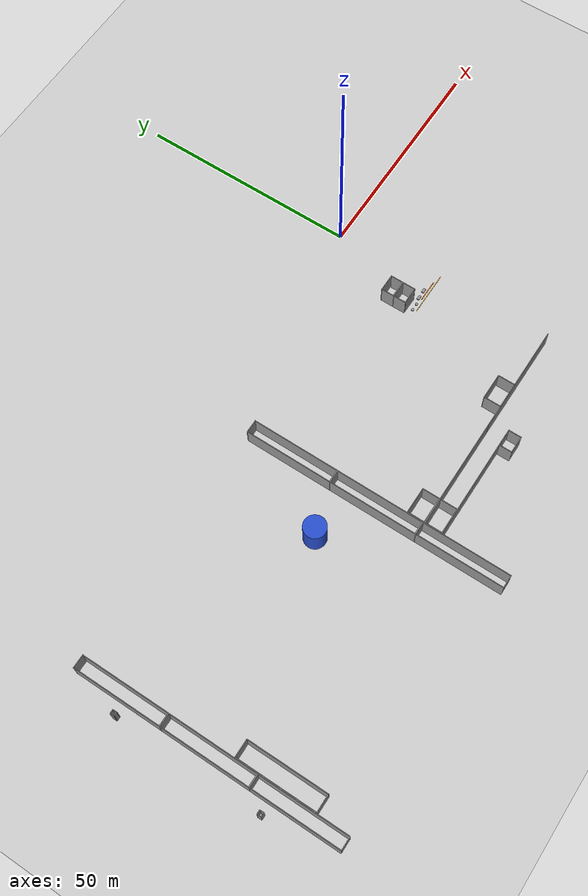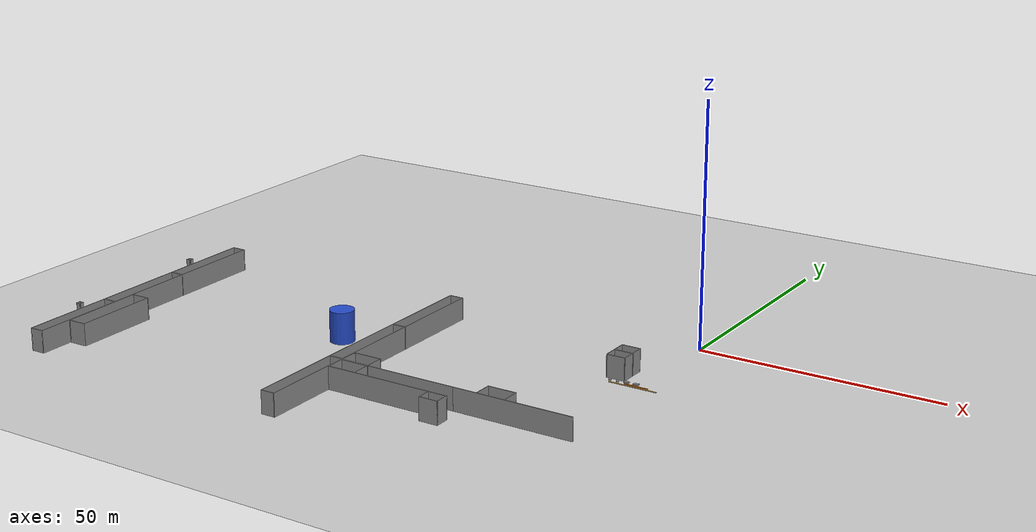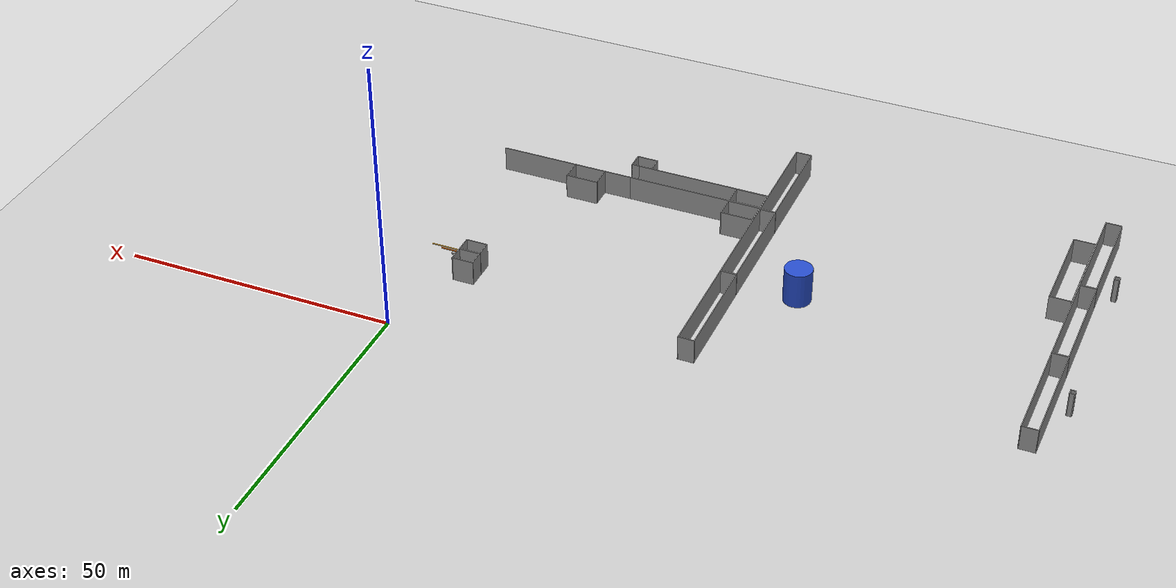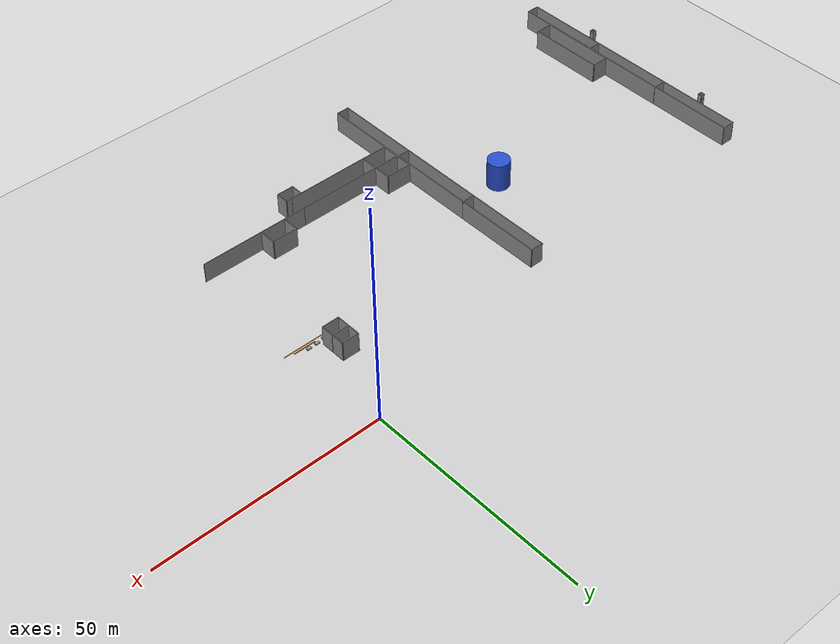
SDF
<sdf version="1.6">
 <world name="default">
  <model name="ground_plane">
   <static>1</static>
   <link name="link">
    <collision name="collision">
     <geometry><plane><normal>0 0 1</normal><size>320 320</size></plane></geometry>
     <surface>
      <contact><collide_bitmask>65535</collide_bitmask></contact>
      <friction><ode><mu>100</mu><mu2>50</mu2></ode></friction>
     </surface>
    </collision>
    <visual name="visual">
     <cast_shadows>0</cast_shadows>
     <geometry><plane><normal>0 0 1</normal><size>320 320</size></plane></geometry>
     <material>
      <script><uri>file://media/materials/scripts/gazebo.material</uri><name>Gazebo/Grey</name></script>
     </material>
    </visual>
   </link>
  </model>
  <model name="base4x6_0">
   <pose>-45.3721 -48.6741 0 0 -0 0</pose>
   <link name="Wall_23">
    <collision name="Wall_23_Collision">
     <geometry><box><size>4 0.15 6.555</size></box></geometry>
     <pose>0 0 1.25 0 -0 0</pose>
    </collision>
    <visual name="Wall_23_Visual">
     <pose>0 0 1.25 0 -0 0</pose>
     <geometry><box><size>4 0.15 6.555</size></box></geometry>
     <material>
      <script><uri>file://media/materials/scripts/gazebo.material</uri><name>Gazebo/Grey</name></script>
      <ambient>1 1 1 1</ambient>
     </material>
     <meta><layer>0</layer></meta>
    </visual>
    <pose>-2.925 0 0 0 -0 -1.5708</pose>
   </link>
   <link name="Wall_24">
    <collision name="Wall_24_Collision">
     <geometry><box><size>6 0.15 6.555</size></box></geometry>
     <pose>0 0 1.25 0 -0 0</pose>
    </collision>
    <visual name="Wall_24_Visual">
     <pose>0 0 1.25 0 -0 0</pose>
     <geometry><box><size>6 0.15 6.555</size></box></geometry>
     <material>
      <script><uri>file://media/materials/scripts/gazebo.material</uri><name>Gazebo/Grey</name></script>
      <ambient>1 1 1 1</ambient>
     </material>
     <meta><layer>0</layer></meta>
    </visual>
    <pose>-0 -1.925 0 0 -0 0</pose>
   </link>
   <link name="Wall_25">
    <collision name="Wall_25_Collision">
     <geometry><box><size>4 0.15 6.555</size></box></geometry>
     <pose>0 0 1.25 0 -0 0</pose>
    </collision>
    <visual name="Wall_25_Visual">
     <pose>0 0 1.25 0 -0 0</pose>
     <geometry><box><size>4 0.15 6.555</size></box></geometry>
     <material>
      <script><uri>file://media/materials/scripts/gazebo.material</uri><name>Gazebo/Grey</name></script>
      <ambient>1 1 1 1</ambient>
     </material>
     <meta><layer>0</layer></meta>
    </visual>
    <pose>2.925 0 0 0 -0 1.5708</pose>
   </link>
   <link name="Wall_26">
    <collision name="Wall_26_Collision">
     <geometry><box><size>6 0.15 6.555</size></box></geometry>
     <pose>0 0 1.25 0 -0 0</pose>
    </collision>
    <visual name="Wall_26_Visual">
     <pose>0 0 1.25 0 -0 0</pose>
     <geometry><box><size>6 0.15 6.555</size></box></geometry>
     <material>
      <script><uri>file://media/materials/scripts/gazebo.material</uri><name>Gazebo/Grey</name></script>
      <ambient>1 1 1 1</ambient>
     </material>
     <meta><layer>0</layer></meta>
    </visual>
    <pose>-0 1.925 0 0 -0 3.14159</pose>
   </link>
   <static>1</static>
  </model>
  <model name="base3x4_37">
   <pose>-24.0394 -56.2074 0 0 -0 0</pose>
   <link name="Wall_18">
    <collision name="Wall_18_Collision">
     <geometry><box><size>3 0.15 6.555</size></box></geometry>
     <pose>0 0 1.25 0 -0 0</pose>
    </collision>
    <visual name="Wall_18_Visual">
     <pose>0 0 1.25 0 -0 0</pose>
     <geometry><box><size>3 0.15 6.555</size></box></geometry>
     <material>
      <script><uri>file://media/materials/scripts/gazebo.material</uri><name>Gazebo/Grey</name></script>
      <ambient>1 1 1 1</ambient>
     </material>
     <meta><layer>0</layer></meta>
    </visual>
    <pose>-1.925 -0 0 0 -0 -1.5708</pose>
   </link>
   <link name="Wall_19">
    <collision name="Wall_19_Collision">
     <geometry><box><size>4 0.15 6.555</size></box></geometry>
     <pose>0 0 1.25 0 -0 0</pose>
    </collision>
    <visual name="Wall_19_Visual">
     <pose>0 0 1.25 0 -0 0</pose>
     <geometry><box><size>4 0.15 6.555</size></box></geometry>
     <material>
      <script><uri>file://media/materials/scripts/gazebo.material</uri><name>Gazebo/Grey</name></script>
      <ambient>1 1 1 1</ambient>
     </material>
     <meta><layer>0</layer></meta>
    </visual>
    <pose>-0 -1.425 0 0 -0 0</pose>
   </link>
   <link name="Wall_20">
    <collision name="Wall_20_Collision">
     <geometry><box><size>3 0.15 6.555</size></box></geometry>
     <pose>0 0 1.25 0 -0 0</pose>
    </collision>
    <visual name="Wall_20_Visual">
     <pose>0 0 1.25 0 -0 0</pose>
     <geometry><box><size>3 0.15 6.555</size></box></geometry>
     <material>
      <script><uri>file://media/materials/scripts/gazebo.material</uri><name>Gazebo/Grey</name></script>
      <ambient>1 1 1 1</ambient>
     </material>
     <meta><layer>0</layer></meta>
    </visual>
    <pose>1.925 -0 0 0 -0 1.5708</pose>
   </link>
   <link name="Wall_21">
    <collision name="Wall_21_Collision">
     <geometry><box><size>4 0.15 6.555</size></box></geometry>
     <pose>0 0 1.25 0 -0 0</pose>
    </collision>
    <visual name="Wall_21_Visual">
     <pose>0 0 1.25 0 -0 0</pose>
     <geometry><box><size>4 0.15 6.555</size></box></geometry>
     <material>
      <script><uri>file://media/materials/scripts/gazebo.material</uri><name>Gazebo/Grey</name></script>
      <ambient>1 1 1 1</ambient>
     </material>
     <meta><layer>0</layer></meta>
    </visual>
    <pose>-0 1.425 0 0 -0 3.14159</pose>
   </link>
   <static>1</static>
  </model>
  <model name="wall_25m_1">
   <pose>-35.9206 -50.7228 0 0 -0 0</pose>
   <link name="Wall_28">
    <collision name="Wall_28_Collision">
     <geometry><box><size>25 0.15 6.555</size></box></geometry>
     <pose>0 0 1.25 0 -0 0</pose>
    </collision>
    <visual name="Wall_28_Visual">
     <pose>0 0 1.25 0 -0 0</pose>
     <geometry><box><size>25 0.15 6.555</size></box></geometry>
     <material>
      <script><uri>file://media/materials/scripts/gazebo.material</uri><name>Gazebo/Grey</name></script>
      <ambient>1 1 1 1</ambient>
     </material>
     <meta><layer>0</layer></meta>
    </visual>
   </link>
   <static>1</static>
  </model>
  <model name="wall_25m_7">
   <pose>-10.9546 -50.7217 0 0 -0 0</pose>
   <link name="Wall_28">
    <collision name="Wall_28_Collision">
     <geometry><box><size>25 0.15 6.555</size></box></geometry>
     <pose>0 0 1.25 0 -0 0</pose>
    </collision>
    <visual name="Wall_28_Visual">
     <pose>0 0 1.25 0 -0 0</pose>
     <geometry><box><size>25 0.15 6.555</size></box></geometry>
     <material>
      <script><uri>file://media/materials/scripts/gazebo.material</uri><name>Gazebo/Grey</name></script>
      <ambient>1 1 1 1</ambient>
     </material>
     <meta><layer>0</layer></meta>
    </visual>
   </link>
   <static>1</static>
  </model>
  <model name="bar10x0.15x0.15">
   <pose>-1.69484 -23.7489 0 0 -0 0</pose>
   <link name="Wall_5">
    <collision name="Wall_5_Collision">
     <geometry><box><size>10 0.15 0.15</size></box></geometry>
     <pose>0 0 0.075 0 -0 0</pose>
    </collision>
    <visual name="Wall_5_Visual">
     <pose>0 0 0.075 0 -0 0</pose>
     <geometry><box><size>10 0.15 0.15</size></box></geometry>
     <material>
      <script><uri>file://media/materials/scripts/gazebo.material</uri><name>Gazebo/Grey</name></script>
      <ambient>1 0.764706 0.305882 1</ambient>
     </material>
     <meta><layer>0</layer></meta>
    </visual>
   </link>
   <static>1</static>
  </model>
  <model name="bar5x0.15x0.15">
   <pose>-1.24356 -23.2103 0 0 -0 0</pose>
   <link name="Wall_12">
    <collision name="Wall_12_Collision">
     <geometry><box><size>5 0.15 0.15</size></box></geometry>
     <pose>0 0 0.075 0 -0 0</pose>
    </collision>
    <visual name="Wall_12_Visual">
     <pose>0 0 0.075 0 -0 0</pose>
     <geometry><box><size>5 0.15 0.15</size></box></geometry>
     <material>
      <script><uri>file://media/materials/scripts/gazebo.material</uri><name>Gazebo/Grey</name></script>
      <ambient>0.996078 0.47451 0.0196078 1</ambient>
     </material>
     <meta><layer>0</layer></meta>
    </visual>
   </link>
   <static>1</static>
  </model>
  <model name="unit_cylinder30x30cm_1">
   <link name="link">
    <inertial>
     <mass>1</mass>
     <inertia><ixx>0.145833</ixx><ixy>0</ixy><ixz>0</ixz><iyy>0.145833</iyy><iyz>0</iyz><izz>0.125</izz></inertia>
    </inertial>
    <visual name="visual">
     <geometry><cylinder><radius>0.3</radius><length>0.3</length></cylinder></geometry>
     <material>
      <script><name>Gazebo/Grey</name><uri>file://media/materials/scripts/gazebo.material</uri></script>
      <shader type="vertex"><normal_map>__default__</normal_map></shader>
      <ambient>0.3 0.3 0.3 1</ambient>
      <diffuse>0.7 0.7 0.7 1</diffuse>
      <specular>0.01 0.01 0.01 1</specular>
      <emissive>0 0 0 1</emissive>
     </material>
    </visual>
    <collision name="collision">
     <geometry><cylinder><radius>0.3</radius><length>0.3</length></cylinder></geometry>
     <surface>
      <friction>
       <ode><mu>1</mu><mu2>1</mu2><fdir1>0 0 0</fdir1><slip1>0</slip1><slip2>0</slip2></ode>
       <torsional>
        <coefficient>1</coefficient>
        <patch_radius>0</patch_radius>
        <surface_radius>0</surface_radius>
        <use_patch_radius>1</use_patch_radius>
        <ode><slip>0</slip></ode>
       </torsional>
      </friction>
      <bounce><restitution_coefficient>0</restitution_coefficient><threshold>1e+06</threshold></bounce>
      <contact>
       <collide_without_contact>0</collide_without_contact>
       <collide_without_contact_bitmask>1</collide_without_contact_bitmask>
       <collide_bitmask>1</collide_bitmask>
       <ode>
        <soft_cfm>0</soft_cfm>
        <soft_erp>0.2</soft_erp>
        <kp>1e+13</kp>
        <kd>1</kd>
        <max_vel>0.01</max_vel>
        <min_depth>0</min_depth>
       </ode>
       <bullet>
        <split_impulse>1</split_impulse>
        <split_impulse_penetration_threshold>-0.01</split_impulse_penetration_threshold>
        <soft_cfm>0</soft_cfm>
        <soft_erp>0.2</soft_erp>
        <kp>1e+13</kp>
        <kd>1</kd>
       </bullet>
      </contact>
     </surface>
    </collision>
   </link>
   <static>0</static>
   <pose>-5.34818 -22.9136 0.149805 -0 -0 -0</pose>
  </model>
  <model name="unit_cylinder30x30cm_2">
   <link name="link">
    <inertial>
     <mass>1</mass>
     <inertia><ixx>0.145833</ixx><ixy>0</ixy><ixz>0</ixz><iyy>0.145833</iyy><iyz>0</iyz><izz>0.125</izz></inertia>
    </inertial>
    <visual name="visual">
     <geometry><cylinder><radius>0.3</radius><length>0.3</length></cylinder></geometry>
     <material>
      <script><name>Gazebo/Grey</name><uri>file://media/materials/scripts/gazebo.material</uri></script>
      <shader type="vertex"><normal_map>__default__</normal_map></shader>
      <ambient>0.3 0.3 0.3 1</ambient>
      <diffuse>0.7 0.7 0.7 1</diffuse>
      <specular>0.01 0.01 0.01 1</specular>
      <emissive>0 0 0 1</emissive>
     </material>
    </visual>
    <collision name="collision">
     <geometry><cylinder><radius>0.3</radius><length>0.3</length></cylinder></geometry>
     <surface>
      <friction>
       <ode><mu>1</mu><mu2>1</mu2><fdir1>0 0 0</fdir1><slip1>0</slip1><slip2>0</slip2></ode>
       <torsional>
        <coefficient>1</coefficient>
        <patch_radius>0</patch_radius>
        <surface_radius>0</surface_radius>
        <use_patch_radius>1</use_patch_radius>
        <ode><slip>0</slip></ode>
       </torsional>
      </friction>
      <bounce><restitution_coefficient>0</restitution_coefficient><threshold>1e+06</threshold></bounce>
      <contact>
       <collide_without_contact>0</collide_without_contact>
       <collide_without_contact_bitmask>1</collide_without_contact_bitmask>
       <collide_bitmask>1</collide_bitmask>
       <ode>
        <soft_cfm>0</soft_cfm>
        <soft_erp>0.2</soft_erp>
        <kp>1e+13</kp>
        <kd>1</kd>
        <max_vel>0.01</max_vel>
        <min_depth>0</min_depth>
       </ode>
       <bullet>
        <split_impulse>1</split_impulse>
        <split_impulse_penetration_threshold>-0.01</split_impulse_penetration_threshold>
        <soft_cfm>0</soft_cfm>
        <soft_erp>0.2</soft_erp>
        <kp>1e+13</kp>
        <kd>1</kd>
       </bullet>
      </contact>
     </surface>
    </collision>
   </link>
   <static>0</static>
   <pose>-6.96506 -22.9077 0.149805 -0 -0 -0</pose>
  </model>
  <model name="unit_box_100x60x30cm_1">
   <link name="link">
    <inertial>
     <mass>1</mass>
     <inertia>
      <ixx>0.166667</ixx>
      <ixy>0</ixy>
      <ixz>0</ixz>
      <iyy>0.166667</iyy>
      <iyz>0</iyz>
      <izz>0.166667</izz>
     </inertia>
    </inertial>
    <visual name="visual">
     <geometry><box><size>1 0.6 0.3</size></box></geometry>
     <material>
      <script><name>Gazebo/Grey</name><uri>file://media/materials/scripts/gazebo.material</uri></script>
      <shader type="vertex"><normal_map>__default__</normal_map></shader>
      <ambient>0.3 0.3 0.3 1</ambient>
      <diffuse>0.7 0.7 0.7 1</diffuse>
      <specular>0.01 0.01 0.01 1</specular>
      <emissive>0 0 0 1</emissive>
     </material>
    </visual>
    <collision name="collision">
     <geometry><box><size>1 0.6 0.3</size></box></geometry>
     <surface>
      <friction>
       <ode><mu>1</mu><mu2>1</mu2><fdir1>0 0 0</fdir1><slip1>0</slip1><slip2>0</slip2></ode>
       <torsional>
        <coefficient>1</coefficient>
        <patch_radius>0</patch_radius>
        <surface_radius>0</surface_radius>
        <use_patch_radius>1</use_patch_radius>
        <ode><slip>0</slip></ode>
       </torsional>
      </friction>
      <bounce><restitution_coefficient>0</restitution_coefficient><threshold>1e+06</threshold></bounce>
      <contact>
       <collide_without_contact>0</collide_without_contact>
       <collide_without_contact_bitmask>1</collide_without_contact_bitmask>
       <collide_bitmask>1</collide_bitmask>
       <ode>
        <soft_cfm>0</soft_cfm>
        <soft_erp>0.2</soft_erp>
        <kp>1e+13</kp>
        <kd>1</kd>
        <max_vel>0.01</max_vel>
        <min_depth>0</min_depth>
       </ode>
       <bullet>
        <split_impulse>1</split_impulse>
        <split_impulse_penetration_threshold>-0.01</split_impulse_penetration_threshold>
        <soft_cfm>0</soft_cfm>
        <soft_erp>0.2</soft_erp>
        <kp>1e+13</kp>
        <kd>1</kd>
       </bullet>
      </contact>
     </surface>
    </collision>
   </link>
   <static>0</static>
   <pose>-3.68716 -22.5271 0.15 0 -0 0</pose>
  </model>
  <model name="unit_box_100x60x30cm_2">
   <link name="link">
    <inertial>
     <mass>1</mass>
     <inertia>
      <ixx>0.166667</ixx>
      <ixy>0</ixy>
      <ixz>0</ixz>
      <iyy>0.166667</iyy>
      <iyz>0</iyz>
      <izz>0.166667</izz>
     </inertia>
    </inertial>
    <visual name="visual">
     <geometry><box><size>1 0.6 0.3</size></box></geometry>
     <material>
      <script><name>Gazebo/Grey</name><uri>file://media/materials/scripts/gazebo.material</uri></script>
      <shader type="vertex"><normal_map>__default__</normal_map></shader>
      <ambient>0.3 0.3 0.3 1</ambient>
      <diffuse>0.7 0.7 0.7 1</diffuse>
      <specular>0.01 0.01 0.01 1</specular>
      <emissive>0 0 0 1</emissive>
     </material>
    </visual>
    <collision name="collision">
     <geometry><box><size>1 0.6 0.3</size></box></geometry>
     <surface>
      <friction>
       <ode><mu>1</mu><mu2>1</mu2><fdir1>0 0 0</fdir1><slip1>0</slip1><slip2>0</slip2></ode>
       <torsional>
        <coefficient>1</coefficient>
        <patch_radius>0</patch_radius>
        <surface_radius>0</surface_radius>
        <use_patch_radius>1</use_patch_radius>
        <ode><slip>0</slip></ode>
       </torsional>
      </friction>
      <bounce><restitution_coefficient>0</restitution_coefficient><threshold>1e+06</threshold></bounce>
      <contact>
       <collide_without_contact>0</collide_without_contact>
       <collide_without_contact_bitmask>1</collide_without_contact_bitmask>
       <collide_bitmask>1</collide_bitmask>
       <ode>
        <soft_cfm>0</soft_cfm>
        <soft_erp>0.2</soft_erp>
        <kp>1e+13</kp>
        <kd>1</kd>
        <max_vel>0.01</max_vel>
        <min_depth>0</min_depth>
       </ode>
       <bullet>
        <split_impulse>1</split_impulse>
        <split_impulse_penetration_threshold>-0.01</split_impulse_penetration_threshold>
        <soft_cfm>0</soft_cfm>
        <soft_erp>0.2</soft_erp>
        <kp>1e+13</kp>
        <kd>1</kd>
       </bullet>
      </contact>
     </surface>
    </collision>
   </link>
   <static>0</static>
   <pose>-1.65474 -22.4797 0.15 0 -0 0</pose>
  </model>
  <model name="base3x4_47">
   <pose>-6.49308 -20.2372 0 0 -0 0</pose>
   <link name="Wall_18">
    <collision name="Wall_18_Collision">
     <geometry><box><size>3 0.15 6.555</size></box></geometry>
     <pose>0 0 1.25 0 -0 0</pose>
    </collision>
    <visual name="Wall_18_Visual">
     <pose>0 0 1.25 0 -0 0</pose>
     <geometry><box><size>3 0.15 6.555</size></box></geometry>
     <material>
      <script><uri>file://media/materials/scripts/gazebo.material</uri><name>Gazebo/Grey</name></script>
      <ambient>1 1 1 1</ambient>
     </material>
     <meta><layer>0</layer></meta>
    </visual>
    <pose>-1.925 -0 0 0 -0 -1.5708</pose>
   </link>
   <link name="Wall_19">
    <collision name="Wall_19_Collision">
     <geometry><box><size>4 0.15 6.555</size></box></geometry>
     <pose>0 0 1.25 0 -0 0</pose>
    </collision>
    <visual name="Wall_19_Visual">
     <pose>0 0 1.25 0 -0 0</pose>
     <geometry><box><size>4 0.15 6.555</size></box></geometry>
     <material>
      <script><uri>file://media/materials/scripts/gazebo.material</uri><name>Gazebo/Grey</name></script>
      <ambient>1 1 1 1</ambient>
     </material>
     <meta><layer>0</layer></meta>
    </visual>
    <pose>-0 -1.425 0 0 -0 0</pose>
   </link>
   <link name="Wall_20">
    <collision name="Wall_20_Collision">
     <geometry><box><size>3 0.15 6.555</size></box></geometry>
     <pose>0 0 1.25 0 -0 0</pose>
    </collision>
    <visual name="Wall_20_Visual">
     <pose>0 0 1.25 0 -0 0</pose>
     <geometry><box><size>3 0.15 6.555</size></box></geometry>
     <material>
      <script><uri>file://media/materials/scripts/gazebo.material</uri><name>Gazebo/Grey</name></script>
      <ambient>1 1 1 1</ambient>
     </material>
     <meta><layer>0</layer></meta>
    </visual>
    <pose>1.925 -0 0 0 -0 1.5708</pose>
   </link>
   <link name="Wall_21">
    <collision name="Wall_21_Collision">
     <geometry><box><size>4 0.15 6.555</size></box></geometry>
     <pose>0 0 1.25 0 -0 0</pose>
    </collision>
    <visual name="Wall_21_Visual">
     <pose>0 0 1.25 0 -0 0</pose>
     <geometry><box><size>4 0.15 6.555</size></box></geometry>
     <material>
      <script><uri>file://media/materials/scripts/gazebo.material</uri><name>Gazebo/Grey</name></script>
      <ambient>1 1 1 1</ambient>
     </material>
     <meta><layer>0</layer></meta>
    </visual>
    <pose>-0 1.425 0 0 -0 3.14159</pose>
   </link>
   <static>1</static>
  </model>
  <model name="base3x4_52">
   <pose>-6.49511 -17.2522 0 0 -0 0</pose>
   <link name="Wall_18">
    <collision name="Wall_18_Collision">
     <geometry><box><size>3 0.15 6.555</size></box></geometry>
     <pose>0 0 1.25 0 -0 0</pose>
    </collision>
    <visual name="Wall_18_Visual">
     <pose>0 0 1.25 0 -0 0</pose>
     <geometry><box><size>3 0.15 6.555</size></box></geometry>
     <material>
      <script><uri>file://media/materials/scripts/gazebo.material</uri><name>Gazebo/Grey</name></script>
      <ambient>1 1 1 1</ambient>
     </material>
     <meta><layer>0</layer></meta>
    </visual>
    <pose>-1.925 -0 0 0 -0 -1.5708</pose>
   </link>
   <link name="Wall_19">
    <collision name="Wall_19_Collision">
     <geometry><box><size>4 0.15 6.555</size></box></geometry>
     <pose>0 0 1.25 0 -0 0</pose>
    </collision>
    <visual name="Wall_19_Visual">
     <pose>0 0 1.25 0 -0 0</pose>
     <geometry><box><size>4 0.15 6.555</size></box></geometry>
     <material>
      <script><uri>file://media/materials/scripts/gazebo.material</uri><name>Gazebo/Grey</name></script>
      <ambient>1 1 1 1</ambient>
     </material>
     <meta><layer>0</layer></meta>
    </visual>
    <pose>-0 -1.425 0 0 -0 0</pose>
   </link>
   <link name="Wall_20">
    <collision name="Wall_20_Collision">
     <geometry><box><size>3 0.15 6.555</size></box></geometry>
     <pose>0 0 1.25 0 -0 0</pose>
    </collision>
    <visual name="Wall_20_Visual">
     <pose>0 0 1.25 0 -0 0</pose>
     <geometry><box><size>3 0.15 6.555</size></box></geometry>
     <material>
      <script><uri>file://media/materials/scripts/gazebo.material</uri><name>Gazebo/Grey</name></script>
      <ambient>1 1 1 1</ambient>
     </material>
     <meta><layer>0</layer></meta>
    </visual>
    <pose>1.925 -0 0 0 -0 1.5708</pose>
   </link>
   <link name="Wall_21">
    <collision name="Wall_21_Collision">
     <geometry><box><size>4 0.15 6.555</size></box></geometry>
     <pose>0 0 1.25 0 -0 0</pose>
    </collision>
    <visual name="Wall_21_Visual">
     <pose>0 0 1.25 0 -0 0</pose>
     <geometry><box><size>4 0.15 6.555</size></box></geometry>
     <material>
      <script><uri>file://media/materials/scripts/gazebo.material</uri><name>Gazebo/Grey</name></script>
      <ambient>1 1 1 1</ambient>
     </material>
     <meta><layer>0</layer></meta>
    </visual>
    <pose>-0 1.425 0 0 -0 3.14159</pose>
   </link>
   <static>1</static>
  </model>
  <model name="wall_25m_11">
   <pose>-35.9629 -54.7669 0 0 -0 0</pose>
   <link name="Wall_28">
    <collision name="Wall_28_Collision">
     <geometry><box><size>25 0.15 6.555</size></box></geometry>
     <pose>0 0 1.25 0 -0 0</pose>
    </collision>
    <visual name="Wall_28_Visual">
     <pose>0 0 1.25 0 -0 0</pose>
     <geometry><box><size>25 0.15 6.555</size></box></geometry>
     <material>
      <script><uri>file://media/materials/scripts/gazebo.material</uri><name>Gazebo/Grey</name></script>
      <ambient>1 1 1 1</ambient>
     </material>
     <meta><layer>0</layer></meta>
    </visual>
   </link>
   <static>1</static>
  </model>
  <model name="base4x6_11">
   <pose>-15.4893 -48.7818 0 0 -0 0</pose>
   <link name="Wall_23">
    <collision name="Wall_23_Collision">
     <geometry><box><size>4 0.15 6.555</size></box></geometry>
     <pose>0 0 1.25 0 -0 0</pose>
    </collision>
    <visual name="Wall_23_Visual">
     <pose>0 0 1.25 0 -0 0</pose>
     <geometry><box><size>4 0.15 6.555</size></box></geometry>
     <material>
      <script><uri>file://media/materials/scripts/gazebo.material</uri><name>Gazebo/Grey</name></script>
      <ambient>1 1 1 1</ambient>
     </material>
     <meta><layer>0</layer></meta>
    </visual>
    <pose>-2.925 0 0 0 -0 -1.5708</pose>
   </link>
   <link name="Wall_24">
    <collision name="Wall_24_Collision">
     <geometry><box><size>6 0.15 6.555</size></box></geometry>
     <pose>0 0 1.25 0 -0 0</pose>
    </collision>
    <visual name="Wall_24_Visual">
     <pose>0 0 1.25 0 -0 0</pose>
     <geometry><box><size>6 0.15 6.555</size></box></geometry>
     <material>
      <script><uri>file://media/materials/scripts/gazebo.material</uri><name>Gazebo/Grey</name></script>
      <ambient>1 1 1 1</ambient>
     </material>
     <meta><layer>0</layer></meta>
    </visual>
    <pose>-0 -1.925 0 0 -0 0</pose>
   </link>
   <link name="Wall_25">
    <collision name="Wall_25_Collision">
     <geometry><box><size>4 0.15 6.555</size></box></geometry>
     <pose>0 0 1.25 0 -0 0</pose>
    </collision>
    <visual name="Wall_25_Visual">
     <pose>0 0 1.25 0 -0 0</pose>
     <geometry><box><size>4 0.15 6.555</size></box></geometry>
     <material>
      <script><uri>file://media/materials/scripts/gazebo.material</uri><name>Gazebo/Grey</name></script>
      <ambient>1 1 1 1</ambient>
     </material>
     <meta><layer>0</layer></meta>
    </visual>
    <pose>2.925 0 0 0 -0 1.5708</pose>
   </link>
   <link name="Wall_26">
    <collision name="Wall_26_Collision">
     <geometry><box><size>6 0.15 6.555</size></box></geometry>
     <pose>0 0 1.25 0 -0 0</pose>
    </collision>
    <visual name="Wall_26_Visual">
     <pose>0 0 1.25 0 -0 0</pose>
     <geometry><box><size>6 0.15 6.555</size></box></geometry>
     <material>
      <script><uri>file://media/materials/scripts/gazebo.material</uri><name>Gazebo/Grey</name></script>
      <ambient>1 1 1 1</ambient>
     </material>
     <meta><layer>0</layer></meta>
    </visual>
    <pose>-0 1.925 0 0 -0 3.14159</pose>
   </link>
   <static>1</static>
  </model>
  <model name="base4x6_0_clone">
   <pose>-45.3653 -52.7639 0 0 -0 0</pose>
   <link name="Wall_23">
    <collision name="Wall_23_Collision">
     <geometry><box><size>4 0.15 6.555</size></box></geometry>
     <pose>0 0 1.25 0 -0 0</pose>
    </collision>
    <visual name="Wall_23_Visual">
     <pose>0 0 1.25 0 -0 0</pose>
     <geometry><box><size>4 0.15 6.555</size></box></geometry>
     <material>
      <script><uri>file://media/materials/scripts/gazebo.material</uri><name>Gazebo/Grey</name></script>
      <ambient>1 1 1 1</ambient>
     </material>
     <meta><layer>0</layer></meta>
    </visual>
    <pose>-2.925 0 0 0 -0 -1.5708</pose>
   </link>
   <link name="Wall_24">
    <collision name="Wall_24_Collision">
     <geometry><box><size>6 0.15 6.555</size></box></geometry>
     <pose>0 0 1.25 0 -0 0</pose>
    </collision>
    <visual name="Wall_24_Visual">
     <pose>0 0 1.25 0 -0 0</pose>
     <geometry><box><size>6 0.15 6.555</size></box></geometry>
     <material>
      <script><uri>file://media/materials/scripts/gazebo.material</uri><name>Gazebo/Grey</name></script>
      <ambient>1 1 1 1</ambient>
     </material>
     <meta><layer>0</layer></meta>
    </visual>
    <pose>-0 -1.925 0 0 -0 0</pose>
   </link>
   <link name="Wall_25">
    <collision name="Wall_25_Collision">
     <geometry><box><size>4 0.15 6.555</size></box></geometry>
     <pose>0 0 1.25 0 -0 0</pose>
    </collision>
    <visual name="Wall_25_Visual">
     <pose>0 0 1.25 0 -0 0</pose>
     <geometry><box><size>4 0.15 6.555</size></box></geometry>
     <material>
      <script><uri>file://media/materials/scripts/gazebo.material</uri><name>Gazebo/Grey</name></script>
      <ambient>1 1 1 1</ambient>
     </material>
     <meta><layer>0</layer></meta>
    </visual>
    <pose>2.925 0 0 0 -0 1.5708</pose>
   </link>
   <link name="Wall_26">
    <collision name="Wall_26_Collision">
     <geometry><box><size>6 0.15 6.555</size></box></geometry>
     <pose>0 0 1.25 0 -0 0</pose>
    </collision>
    <visual name="Wall_26_Visual">
     <pose>0 0 1.25 0 -0 0</pose>
     <geometry><box><size>6 0.15 6.555</size></box></geometry>
     <material>
      <script><uri>file://media/materials/scripts/gazebo.material</uri><name>Gazebo/Grey</name></script>
      <ambient>1 1 1 1</ambient>
     </material>
     <meta><layer>0</layer></meta>
    </visual>
    <pose>-0 1.925 0 0 -0 3.14159</pose>
   </link>
   <static>1</static>
  </model>
  <model name="unit_cylinder_r2.5_l1_clone_3">
   <link name="link">
    <inertial>
     <mass>1</mass>
     <inertia><ixx>0.145833</ixx><ixy>0</ixy><ixz>0</ixz><iyy>0.145833</iyy><iyz>0</iyz><izz>0.125</izz></inertia>
    </inertial>
    <visual name="visual">
     <geometry><cylinder><radius>2.5</radius><length>6.555</length></cylinder></geometry>
     <material>
      <script><name>Gazebo/Blue</name><uri>file://media/materials/scripts/gazebo.material</uri></script>
      <shader type="vertex"><normal_map>__default__</normal_map></shader>
      <ambient>0.3 0.3 0.3 1</ambient>
      <diffuse>0.7 0.7 0.7 1</diffuse>
      <specular>0.01 0.01 0.01 1</specular>
      <emissive>0 0 0 1</emissive>
     </material>
    </visual>
    <collision name="collision">
     <geometry><cylinder><radius>2.5</radius><length>6.555</length></cylinder></geometry>
     <surface>
      <friction>
       <ode><mu>1</mu><mu2>1</mu2><fdir1>0 0 0</fdir1><slip1>0</slip1><slip2>0</slip2></ode>
       <torsional>
        <coefficient>1</coefficient>
        <patch_radius>0</patch_radius>
        <surface_radius>0</surface_radius>
        <use_patch_radius>1</use_patch_radius>
        <ode><slip>0</slip></ode>
       </torsional>
      </friction>
      <bounce><restitution_coefficient>0</restitution_coefficient><threshold>1e+06</threshold></bounce>
      <contact>
       <collide_without_contact>0</collide_without_contact>
       <collide_without_contact_bitmask>1</collide_without_contact_bitmask>
       <collide_bitmask>1</collide_bitmask>
       <ode>
        <soft_cfm>0</soft_cfm>
        <soft_erp>0.2</soft_erp>
        <kp>1e+13</kp>
        <kd>1</kd>
        <max_vel>0.01</max_vel>
        <min_depth>0</min_depth>
       </ode>
       <bullet>
        <split_impulse>1</split_impulse>
        <split_impulse_penetration_threshold>-0.01</split_impulse_penetration_threshold>
        <soft_cfm>0</soft_cfm>
        <soft_erp>0.2</soft_erp>
        <kp>1e+13</kp>
        <kd>1</kd>
       </bullet>
      </contact>
     </surface>
    </collision>
   </link>
   <static>0</static>
   <pose>-61.424 -33.5409 3.27733 5.6e-05 5.4e-05 -1.8e-05</pose>
  </model>
  <model name="base20x3_clone_2">
   <pose>-49.9096 -20.4405 0 0 -0 0</pose>
   <link name="Wall_21">
    <collision name="Wall_21_Collision">
     <geometry><box><size>20 0.15 6.555</size></box></geometry>
     <pose>0 0 1.25 0 -0 0</pose>
    </collision>
    <visual name="Wall_21_Visual">
     <pose>0 0 1.25 0 -0 0</pose>
     <geometry><box><size>20 0.15 6.555</size></box></geometry>
     <material>
      <script><uri>file://media/materials/scripts/gazebo.material</uri><name>Gazebo/Grey</name></script>
      <ambient>1 1 1 1</ambient>
     </material>
     <meta><layer>0</layer></meta>
    </visual>
    <pose>-1.425 -0 0 0 -0 -1.5708</pose>
   </link>
   <link name="Wall_22">
    <collision name="Wall_22_Collision">
     <geometry><box><size>3 0.15 6.555</size></box></geometry>
     <pose>0 0 1.25 0 -0 0</pose>
    </collision>
    <visual name="Wall_22_Visual">
     <pose>0 0 1.25 0 -0 0</pose>
     <geometry><box><size>3 0.15 6.555</size></box></geometry>
     <material>
      <script><uri>file://media/materials/scripts/gazebo.material</uri><name>Gazebo/Grey</name></script>
      <ambient>1 1 1 1</ambient>
     </material>
     <meta><layer>0</layer></meta>
    </visual>
    <pose>-0 -9.925 0 0 -0 0</pose>
   </link>
   <link name="Wall_23">
    <collision name="Wall_23_Collision">
     <geometry><box><size>20 0.15 6.555</size></box></geometry>
     <pose>0 0 1.25 0 -0 0</pose>
    </collision>
    <visual name="Wall_23_Visual">
     <pose>0 0 1.25 0 -0 0</pose>
     <geometry><box><size>20 0.15 6.555</size></box></geometry>
     <material>
      <script><uri>file://media/materials/scripts/gazebo.material</uri><name>Gazebo/Grey</name></script>
      <ambient>1 1 1 1</ambient>
     </material>
     <meta><layer>0</layer></meta>
    </visual>
    <pose>1.425 -0 0 0 -0 1.5708</pose>
   </link>
   <link name="Wall_24">
    <collision name="Wall_24_Collision">
     <geometry><box><size>3 0.15 6.555</size></box></geometry>
     <pose>0 0 1.25 0 -0 0</pose>
    </collision>
    <visual name="Wall_24_Visual">
     <pose>0 0 1.25 0 -0 0</pose>
     <geometry><box><size>3 0.15 6.555</size></box></geometry>
     <material>
      <script><uri>file://media/materials/scripts/gazebo.material</uri><name>Gazebo/Grey</name></script>
      <ambient>1 1 1 1</ambient>
     </material>
     <meta><layer>0</layer></meta>
    </visual>
    <pose>-0 9.925 0 0 -0 3.14159</pose>
   </link>
   <static>1</static>
  </model>
  <model name="base20x3_clone_3">
   <pose>-49.9068 -40.4369 0 0 -0 0</pose>
   <link name="Wall_21">
    <collision name="Wall_21_Collision">
     <geometry><box><size>20 0.15 6.555</size></box></geometry>
     <pose>0 0 1.25 0 -0 0</pose>
    </collision>
    <visual name="Wall_21_Visual">
     <pose>0 0 1.25 0 -0 0</pose>
     <geometry><box><size>20 0.15 6.555</size></box></geometry>
     <material>
      <script><uri>file://media/materials/scripts/gazebo.material</uri><name>Gazebo/Grey</name></script>
      <ambient>1 1 1 1</ambient>
     </material>
     <meta><layer>0</layer></meta>
    </visual>
    <pose>-1.425 -0 0 0 -0 -1.5708</pose>
   </link>
   <link name="Wall_22">
    <collision name="Wall_22_Collision">
     <geometry><box><size>3 0.15 6.555</size></box></geometry>
     <pose>0 0 1.25 0 -0 0</pose>
    </collision>
    <visual name="Wall_22_Visual">
     <pose>0 0 1.25 0 -0 0</pose>
     <geometry><box><size>3 0.15 6.555</size></box></geometry>
     <material>
      <script><uri>file://media/materials/scripts/gazebo.material</uri><name>Gazebo/Grey</name></script>
      <ambient>1 1 1 1</ambient>
     </material>
     <meta><layer>0</layer></meta>
    </visual>
    <pose>-0 -9.925 0 0 -0 0</pose>
   </link>
   <link name="Wall_23">
    <collision name="Wall_23_Collision">
     <geometry><box><size>20 0.15 6.555</size></box></geometry>
     <pose>0 0 1.25 0 -0 0</pose>
    </collision>
    <visual name="Wall_23_Visual">
     <pose>0 0 1.25 0 -0 0</pose>
     <geometry><box><size>20 0.15 6.555</size></box></geometry>
     <material>
      <script><uri>file://media/materials/scripts/gazebo.material</uri><name>Gazebo/Grey</name></script>
      <ambient>1 1 1 1</ambient>
     </material>
     <meta><layer>0</layer></meta>
    </visual>
    <pose>1.425 -0 0 0 -0 1.5708</pose>
   </link>
   <link name="Wall_24">
    <collision name="Wall_24_Collision">
     <geometry><box><size>3 0.15 6.555</size></box></geometry>
     <pose>0 0 1.25 0 -0 0</pose>
    </collision>
    <visual name="Wall_24_Visual">
     <pose>0 0 1.25 0 -0 0</pose>
     <geometry><box><size>3 0.15 6.555</size></box></geometry>
     <material>
      <script><uri>file://media/materials/scripts/gazebo.material</uri><name>Gazebo/Grey</name></script>
      <ambient>1 1 1 1</ambient>
     </material>
     <meta><layer>0</layer></meta>
    </visual>
    <pose>-0 9.925 0 0 -0 3.14159</pose>
   </link>
   <static>1</static>
  </model>
  <model name="base20x3_clone_4">
   <pose>-49.8964 -60.4367 0 0 -0 0</pose>
   <link name="Wall_21">
    <collision name="Wall_21_Collision">
     <geometry><box><size>20 0.15 6.555</size></box></geometry>
     <pose>0 0 1.25 0 -0 0</pose>
    </collision>
    <visual name="Wall_21_Visual">
     <pose>0 0 1.25 0 -0 0</pose>
     <geometry><box><size>20 0.15 6.555</size></box></geometry>
     <material>
      <script><uri>file://media/materials/scripts/gazebo.material</uri><name>Gazebo/Grey</name></script>
      <ambient>1 1 1 1</ambient>
     </material>
     <meta><layer>0</layer></meta>
    </visual>
    <pose>-1.425 -0 0 0 -0 -1.5708</pose>
   </link>
   <link name="Wall_22">
    <collision name="Wall_22_Collision">
     <geometry><box><size>3 0.15 6.555</size></box></geometry>
     <pose>0 0 1.25 0 -0 0</pose>
    </collision>
    <visual name="Wall_22_Visual">
     <pose>0 0 1.25 0 -0 0</pose>
     <geometry><box><size>3 0.15 6.555</size></box></geometry>
     <material>
      <script><uri>file://media/materials/scripts/gazebo.material</uri><name>Gazebo/Grey</name></script>
      <ambient>1 1 1 1</ambient>
     </material>
     <meta><layer>0</layer></meta>
    </visual>
    <pose>-0 -9.925 0 0 -0 0</pose>
   </link>
   <link name="Wall_23">
    <collision name="Wall_23_Collision">
     <geometry><box><size>20 0.15 6.555</size></box></geometry>
     <pose>0 0 1.25 0 -0 0</pose>
    </collision>
    <visual name="Wall_23_Visual">
     <pose>0 0 1.25 0 -0 0</pose>
     <geometry><box><size>20 0.15 6.555</size></box></geometry>
     <material>
      <script><uri>file://media/materials/scripts/gazebo.material</uri><name>Gazebo/Grey</name></script>
      <ambient>1 1 1 1</ambient>
     </material>
     <meta><layer>0</layer></meta>
    </visual>
    <pose>1.425 -0 0 0 -0 1.5708</pose>
   </link>
   <link name="Wall_24">
    <collision name="Wall_24_Collision">
     <geometry><box><size>3 0.15 6.555</size></box></geometry>
     <pose>0 0 1.25 0 -0 0</pose>
    </collision>
    <visual name="Wall_24_Visual">
     <pose>0 0 1.25 0 -0 0</pose>
     <geometry><box><size>3 0.15 6.555</size></box></geometry>
     <material>
      <script><uri>file://media/materials/scripts/gazebo.material</uri><name>Gazebo/Grey</name></script>
      <ambient>1 1 1 1</ambient>
     </material>
     <meta><layer>0</layer></meta>
    </visual>
    <pose>-0 9.925 0 0 -0 3.14159</pose>
   </link>
   <static>1</static>
  </model>
  <model name="base20x3_3_clone_clone_6">
   <pose>-107.444 -20.4119 0 0 -0 0</pose>
   <link name="Wall_21">
    <collision name="Wall_21_Collision">
     <geometry><box><size>20 0.15 6.555</size></box></geometry>
     <pose>0 0 1.25 0 -0 0</pose>
    </collision>
    <visual name="Wall_21_Visual">
     <pose>0 0 1.25 0 -0 0</pose>
     <geometry><box><size>20 0.15 6.555</size></box></geometry>
     <material>
      <script><uri>file://media/materials/scripts/gazebo.material</uri><name>Gazebo/Grey</name></script>
      <ambient>1 1 1 1</ambient>
     </material>
     <meta><layer>0</layer></meta>
    </visual>
    <pose>-1.425 -0 0 0 -0 -1.5708</pose>
   </link>
   <link name="Wall_22">
    <collision name="Wall_22_Collision">
     <geometry><box><size>3 0.15 6.555</size></box></geometry>
     <pose>0 0 1.25 0 -0 0</pose>
    </collision>
    <visual name="Wall_22_Visual">
     <pose>0 0 1.25 0 -0 0</pose>
     <geometry><box><size>3 0.15 6.555</size></box></geometry>
     <material>
      <script><uri>file://media/materials/scripts/gazebo.material</uri><name>Gazebo/Grey</name></script>
      <ambient>1 1 1 1</ambient>
     </material>
     <meta><layer>0</layer></meta>
    </visual>
    <pose>-0 -9.925 0 0 -0 0</pose>
   </link>
   <link name="Wall_23">
    <collision name="Wall_23_Collision">
     <geometry><box><size>20 0.15 6.555</size></box></geometry>
     <pose>0 0 1.25 0 -0 0</pose>
    </collision>
    <visual name="Wall_23_Visual">
     <pose>0 0 1.25 0 -0 0</pose>
     <geometry><box><size>20 0.15 6.555</size></box></geometry>
     <material>
      <script><uri>file://media/materials/scripts/gazebo.material</uri><name>Gazebo/Grey</name></script>
      <ambient>1 1 1 1</ambient>
     </material>
     <meta><layer>0</layer></meta>
    </visual>
    <pose>1.425 -0 0 0 -0 1.5708</pose>
   </link>
   <link name="Wall_24">
    <collision name="Wall_24_Collision">
     <geometry><box><size>3 0.15 6.555</size></box></geometry>
     <pose>0 0 1.25 0 -0 0</pose>
    </collision>
    <visual name="Wall_24_Visual">
     <pose>0 0 1.25 0 -0 0</pose>
     <geometry><box><size>3 0.15 6.555</size></box></geometry>
     <material>
      <script><uri>file://media/materials/scripts/gazebo.material</uri><name>Gazebo/Grey</name></script>
      <ambient>1 1 1 1</ambient>
     </material>
     <meta><layer>0</layer></meta>
    </visual>
    <pose>-0 9.925 0 0 -0 3.14159</pose>
   </link>
   <static>1</static>
  </model>
  <model name="base20x3_3_clone_clone_7">
   <pose>-107.45 -40.3785 0 0 -0 0</pose>
   <link name="Wall_21">
    <collision name="Wall_21_Collision">
     <geometry><box><size>20 0.15 6.555</size></box></geometry>
     <pose>0 0 1.25 0 -0 0</pose>
    </collision>
    <visual name="Wall_21_Visual">
     <pose>0 0 1.25 0 -0 0</pose>
     <geometry><box><size>20 0.15 6.555</size></box></geometry>
     <material>
      <script><uri>file://media/materials/scripts/gazebo.material</uri><name>Gazebo/Grey</name></script>
      <ambient>1 1 1 1</ambient>
     </material>
     <meta><layer>0</layer></meta>
    </visual>
    <pose>-1.425 -0 0 0 -0 -1.5708</pose>
   </link>
   <link name="Wall_22">
    <collision name="Wall_22_Collision">
     <geometry><box><size>3 0.15 6.555</size></box></geometry>
     <pose>0 0 1.25 0 -0 0</pose>
    </collision>
    <visual name="Wall_22_Visual">
     <pose>0 0 1.25 0 -0 0</pose>
     <geometry><box><size>3 0.15 6.555</size></box></geometry>
     <material>
      <script><uri>file://media/materials/scripts/gazebo.material</uri><name>Gazebo/Grey</name></script>
      <ambient>1 1 1 1</ambient>
     </material>
     <meta><layer>0</layer></meta>
    </visual>
    <pose>-0 -9.925 0 0 -0 0</pose>
   </link>
   <link name="Wall_23">
    <collision name="Wall_23_Collision">
     <geometry><box><size>20 0.15 6.555</size></box></geometry>
     <pose>0 0 1.25 0 -0 0</pose>
    </collision>
    <visual name="Wall_23_Visual">
     <pose>0 0 1.25 0 -0 0</pose>
     <geometry><box><size>20 0.15 6.555</size></box></geometry>
     <material>
      <script><uri>file://media/materials/scripts/gazebo.material</uri><name>Gazebo/Grey</name></script>
      <ambient>1 1 1 1</ambient>
     </material>
     <meta><layer>0</layer></meta>
    </visual>
    <pose>1.425 -0 0 0 -0 1.5708</pose>
   </link>
   <link name="Wall_24">
    <collision name="Wall_24_Collision">
     <geometry><box><size>3 0.15 6.555</size></box></geometry>
     <pose>0 0 1.25 0 -0 0</pose>
    </collision>
    <visual name="Wall_24_Visual">
     <pose>0 0 1.25 0 -0 0</pose>
     <geometry><box><size>3 0.15 6.555</size></box></geometry>
     <material>
      <script><uri>file://media/materials/scripts/gazebo.material</uri><name>Gazebo/Grey</name></script>
      <ambient>1 1 1 1</ambient>
     </material>
     <meta><layer>0</layer></meta>
    </visual>
    <pose>-0 9.925 0 0 -0 3.14159</pose>
   </link>
   <static>1</static>
  </model>
  <model name="base20x3_3_clone_clone_8">
   <pose>-107.447 -60.3711 0 0 -0 0</pose>
   <link name="Wall_21">
    <collision name="Wall_21_Collision">
     <geometry><box><size>20 0.15 6.555</size></box></geometry>
     <pose>0 0 1.25 0 -0 0</pose>
    </collision>
    <visual name="Wall_21_Visual">
     <pose>0 0 1.25 0 -0 0</pose>
     <geometry><box><size>20 0.15 6.555</size></box></geometry>
     <material>
      <script><uri>file://media/materials/scripts/gazebo.material</uri><name>Gazebo/Grey</name></script>
      <ambient>1 1 1 1</ambient>
     </material>
     <meta><layer>0</layer></meta>
    </visual>
    <pose>-1.425 -0 0 0 -0 -1.5708</pose>
   </link>
   <link name="Wall_22">
    <collision name="Wall_22_Collision">
     <geometry><box><size>3 0.15 6.555</size></box></geometry>
     <pose>0 0 1.25 0 -0 0</pose>
    </collision>
    <visual name="Wall_22_Visual">
     <pose>0 0 1.25 0 -0 0</pose>
     <geometry><box><size>3 0.15 6.555</size></box></geometry>
     <material>
      <script><uri>file://media/materials/scripts/gazebo.material</uri><name>Gazebo/Grey</name></script>
      <ambient>1 1 1 1</ambient>
     </material>
     <meta><layer>0</layer></meta>
    </visual>
    <pose>-0 -9.925 0 0 -0 0</pose>
   </link>
   <link name="Wall_23">
    <collision name="Wall_23_Collision">
     <geometry><box><size>20 0.15 6.555</size></box></geometry>
     <pose>0 0 1.25 0 -0 0</pose>
    </collision>
    <visual name="Wall_23_Visual">
     <pose>0 0 1.25 0 -0 0</pose>
     <geometry><box><size>20 0.15 6.555</size></box></geometry>
     <material>
      <script><uri>file://media/materials/scripts/gazebo.material</uri><name>Gazebo/Grey</name></script>
      <ambient>1 1 1 1</ambient>
     </material>
     <meta><layer>0</layer></meta>
    </visual>
    <pose>1.425 -0 0 0 -0 1.5708</pose>
   </link>
   <link name="Wall_24">
    <collision name="Wall_24_Collision">
     <geometry><box><size>3 0.15 6.555</size></box></geometry>
     <pose>0 0 1.25 0 -0 0</pose>
    </collision>
    <visual name="Wall_24_Visual">
     <pose>0 0 1.25 0 -0 0</pose>
     <geometry><box><size>3 0.15 6.555</size></box></geometry>
     <material>
      <script><uri>file://media/materials/scripts/gazebo.material</uri><name>Gazebo/Grey</name></script>
      <ambient>1 1 1 1</ambient>
     </material>
     <meta><layer>0</layer></meta>
    </visual>
    <pose>-0 9.925 0 0 -0 3.14159</pose>
   </link>
   <static>1</static>
  </model>
  <model name="box_1mx1m_15_clone_clone_4">
   <pose>-111.531 -21.7981 0 0 -0 0</pose>
   <link name="Wall_10">
    <collision name="Wall_10_Collision">
     <geometry><box><size>1 0.15 6.555</size></box></geometry>
     <pose>0 0 1.25 0 -0 0</pose>
    </collision>
    <visual name="Wall_10_Visual">
     <pose>0 0 1.25 0 -0 0</pose>
     <geometry><box><size>1 0.15 6.555</size></box></geometry>
     <material>
      <script><uri>file://media/materials/scripts/gazebo.material</uri><name>Gazebo/Grey</name></script>
      <ambient>1 1 1 1</ambient>
     </material>
     <meta><layer>0</layer></meta>
    </visual>
    <pose>-0.425 0 0 0 -0 -1.5708</pose>
   </link>
   <link name="Wall_11">
    <collision name="Wall_11_Collision">
     <geometry><box><size>1 0.15 6.555</size></box></geometry>
     <pose>0 0 1.25 0 -0 0</pose>
    </collision>
    <visual name="Wall_11_Visual">
     <pose>0 0 1.25 0 -0 0</pose>
     <geometry><box><size>1 0.15 6.555</size></box></geometry>
     <material>
      <script><uri>file://media/materials/scripts/gazebo.material</uri><name>Gazebo/Grey</name></script>
      <ambient>1 1 1 1</ambient>
     </material>
     <meta><layer>0</layer></meta>
    </visual>
    <pose>0 -0.425 0 0 -0 0</pose>
   </link>
   <link name="Wall_12">
    <collision name="Wall_12_Collision">
     <geometry><box><size>1 0.15 6.555</size></box></geometry>
     <pose>0 0 1.25 0 -0 0</pose>
    </collision>
    <visual name="Wall_12_Visual">
     <pose>0 0 1.25 0 -0 0</pose>
     <geometry><box><size>1 0.15 6.555</size></box></geometry>
     <material>
      <script><uri>file://media/materials/scripts/gazebo.material</uri><name>Gazebo/Grey</name></script>
      <ambient>1 1 1 1</ambient>
     </material>
     <meta><layer>0</layer></meta>
    </visual>
    <pose>0.425 0 0 0 -0 1.5708</pose>
   </link>
   <link name="Wall_13">
    <collision name="Wall_13_Collision">
     <geometry><box><size>1 0.15 6.555</size></box></geometry>
     <pose>0 0 1.25 0 -0 0</pose>
    </collision>
    <visual name="Wall_13_Visual">
     <pose>0 0 1.25 0 -0 0</pose>
     <geometry><box><size>1 0.15 6.555</size></box></geometry>
     <material>
      <script><uri>file://media/materials/scripts/gazebo.material</uri><name>Gazebo/Grey</name></script>
      <ambient>1 1 1 1</ambient>
     </material>
     <meta><layer>0</layer></meta>
    </visual>
    <pose>0 0.425 0 0 -0 3.14159</pose>
   </link>
   <static>1</static>
  </model>
  <model name="box_1mx1m_15_clone_clone_5">
   <pose>-111.465 -54.6444 0 0 -0 0</pose>
   <link name="Wall_10">
    <collision name="Wall_10_Collision">
     <geometry><box><size>1 0.15 6.555</size></box></geometry>
     <pose>0 0 1.25 0 -0 0</pose>
    </collision>
    <visual name="Wall_10_Visual">
     <pose>0 0 1.25 0 -0 0</pose>
     <geometry><box><size>1 0.15 6.555</size></box></geometry>
     <material>
      <script><uri>file://media/materials/scripts/gazebo.material</uri><name>Gazebo/Grey</name></script>
      <ambient>1 1 1 1</ambient>
     </material>
     <meta><layer>0</layer></meta>
    </visual>
    <pose>-0.425 0 0 0 -0 -1.5708</pose>
   </link>
   <link name="Wall_11">
    <collision name="Wall_11_Collision">
     <geometry><box><size>1 0.15 6.555</size></box></geometry>
     <pose>0 0 1.25 0 -0 0</pose>
    </collision>
    <visual name="Wall_11_Visual">
     <pose>0 0 1.25 0 -0 0</pose>
     <geometry><box><size>1 0.15 6.555</size></box></geometry>
     <material>
      <script><uri>file://media/materials/scripts/gazebo.material</uri><name>Gazebo/Grey</name></script>
      <ambient>1 1 1 1</ambient>
     </material>
     <meta><layer>0</layer></meta>
    </visual>
    <pose>0 -0.425 0 0 -0 0</pose>
   </link>
   <link name="Wall_12">
    <collision name="Wall_12_Collision">
     <geometry><box><size>1 0.15 6.555</size></box></geometry>
     <pose>0 0 1.25 0 -0 0</pose>
    </collision>
    <visual name="Wall_12_Visual">
     <pose>0 0 1.25 0 -0 0</pose>
     <geometry><box><size>1 0.15 6.555</size></box></geometry>
     <material>
      <script><uri>file://media/materials/scripts/gazebo.material</uri><name>Gazebo/Grey</name></script>
      <ambient>1 1 1 1</ambient>
     </material>
     <meta><layer>0</layer></meta>
    </visual>
    <pose>0.425 0 0 0 -0 1.5708</pose>
   </link>
   <link name="Wall_13">
    <collision name="Wall_13_Collision">
     <geometry><box><size>1 0.15 6.555</size></box></geometry>
     <pose>0 0 1.25 0 -0 0</pose>
    </collision>
    <visual name="Wall_13_Visual">
     <pose>0 0 1.25 0 -0 0</pose>
     <geometry><box><size>1 0.15 6.555</size></box></geometry>
     <material>
      <script><uri>file://media/materials/scripts/gazebo.material</uri><name>Gazebo/Grey</name></script>
      <ambient>1 1 1 1</ambient>
     </material>
     <meta><layer>0</layer></meta>
    </visual>
    <pose>0 0.425 0 0 -0 3.14159</pose>
   </link>
   <static>1</static>
  </model>
  <model name="base18x4_3_clone_1">
   <pose>-103.922 -54.151 0 0 -0 0</pose>
   <link name="Wall_6">
    <collision name="Wall_6_Collision">
     <geometry><box><size>18 0.15 6.555</size></box></geometry>
     <pose>0 0 1.25 0 -0 0</pose>
    </collision>
    <visual name="Wall_6_Visual">
     <pose>0 0 1.25 0 -0 0</pose>
     <geometry><box><size>18 0.15 6.555</size></box></geometry>
     <material>
      <script><uri>file://media/materials/scripts/gazebo.material</uri><name>Gazebo/Grey</name></script>
      <ambient>1 1 1 1</ambient>
     </material>
     <meta><layer>0</layer></meta>
    </visual>
    <pose>-1.925 0 0 0 -0 -1.5708</pose>
   </link>
   <link name="Wall_7">
    <collision name="Wall_7_Collision">
     <geometry><box><size>4 0.15 6.555</size></box></geometry>
     <pose>0 0 1.25 0 -0 0</pose>
    </collision>
    <visual name="Wall_7_Visual">
     <pose>0 0 1.25 0 -0 0</pose>
     <geometry><box><size>4 0.15 6.555</size></box></geometry>
     <material>
      <script><uri>file://media/materials/scripts/gazebo.material</uri><name>Gazebo/Grey</name></script>
      <ambient>1 1 1 1</ambient>
     </material>
     <meta><layer>0</layer></meta>
    </visual>
    <pose>0 -8.925 0 0 -0 0</pose>
   </link>
   <link name="Wall_8">
    <collision name="Wall_8_Collision">
     <geometry><box><size>18 0.15 6.555</size></box></geometry>
     <pose>0 0 1.25 0 -0 0</pose>
    </collision>
    <visual name="Wall_8_Visual">
     <pose>0 0 1.25 0 -0 0</pose>
     <geometry><box><size>18 0.15 6.555</size></box></geometry>
     <material>
      <script><uri>file://media/materials/scripts/gazebo.material</uri><name>Gazebo/Grey</name></script>
      <ambient>1 1 1 1</ambient>
     </material>
     <meta><layer>0</layer></meta>
    </visual>
    <pose>1.925 0 0 0 -0 1.5708</pose>
   </link>
   <link name="Wall_9">
    <collision name="Wall_9_Collision">
     <geometry><box><size>4 0.15 6.555</size></box></geometry>
     <pose>0 0 1.25 0 -0 0</pose>
    </collision>
    <visual name="Wall_9_Visual">
     <pose>0 0 1.25 0 -0 0</pose>
     <geometry><box><size>4 0.15 6.555</size></box></geometry>
     <material>
      <script><uri>file://media/materials/scripts/gazebo.material</uri><name>Gazebo/Grey</name></script>
      <ambient>1 1 1 1</ambient>
     </material>
     <meta><layer>0</layer></meta>
    </visual>
    <pose>0 8.925 0 0 -0 3.14159</pose>
   </link>
   <static>1</static>
  </model>
 </world>
</sdf>
